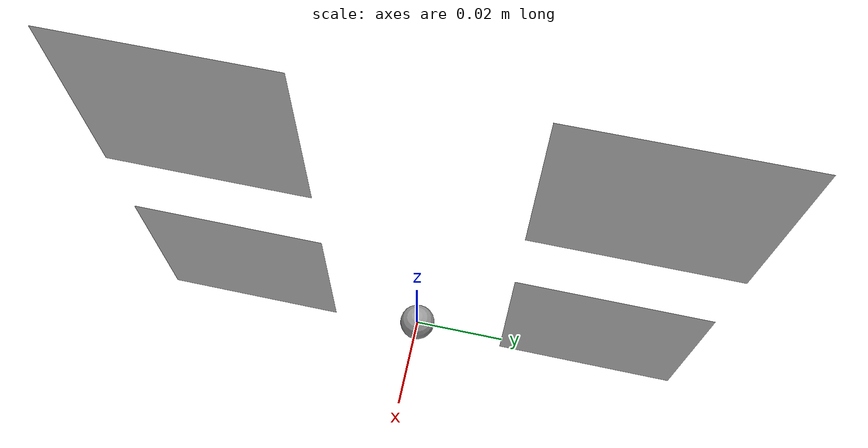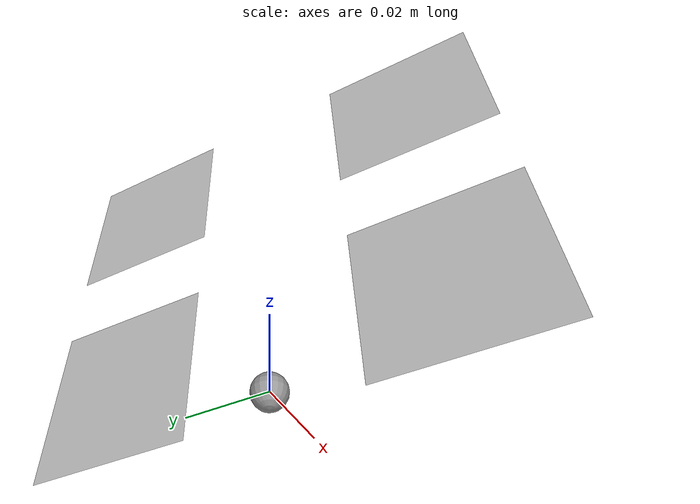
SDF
<?xml version='1.0'?>
<sdf version='1.6'>
  <model name='bulb_tag_ring'>
    <static>true</static>
    <link name='bulb_frame'>
      <visual name='body'><geometry><sphere><radius>0.004</radius></sphere></geometry><material><ambient>0.6 0.6 0.6 1</ambient><diffuse>0.6 0.6 0.6 1</diffuse></material></visual>

      <visual name='tag_200'>
          <geometry><mesh><uri>file:///home/zlhq/px4_fly_ws/src/uav_bulb_camera_pose/sim/models/bulb_tag_ring/meshes/tag_200.dae</uri></mesh></geometry>
      </visual>

      <visual name='tag_201'>
          <geometry><mesh><uri>file:///home/zlhq/px4_fly_ws/src/uav_bulb_camera_pose/sim/models/bulb_tag_ring/meshes/tag_201.dae</uri></mesh></geometry>
      </visual>

      <visual name='tag_202'>
          <geometry><mesh><uri>file:///home/zlhq/px4_fly_ws/src/uav_bulb_camera_pose/sim/models/bulb_tag_ring/meshes/tag_202.dae</uri></mesh></geometry>
      </visual>

      <visual name='tag_203'>
          <geometry><mesh><uri>file:///home/zlhq/px4_fly_ws/src/uav_bulb_camera_pose/sim/models/bulb_tag_ring/meshes/tag_203.dae</uri></mesh></geometry>
      </visual>
    </link>
  </model>
</sdf>
